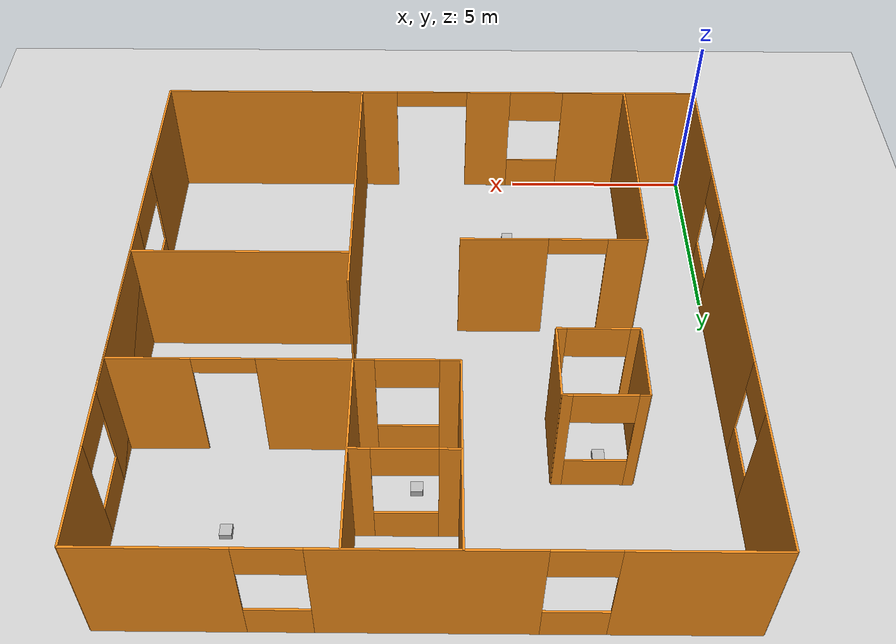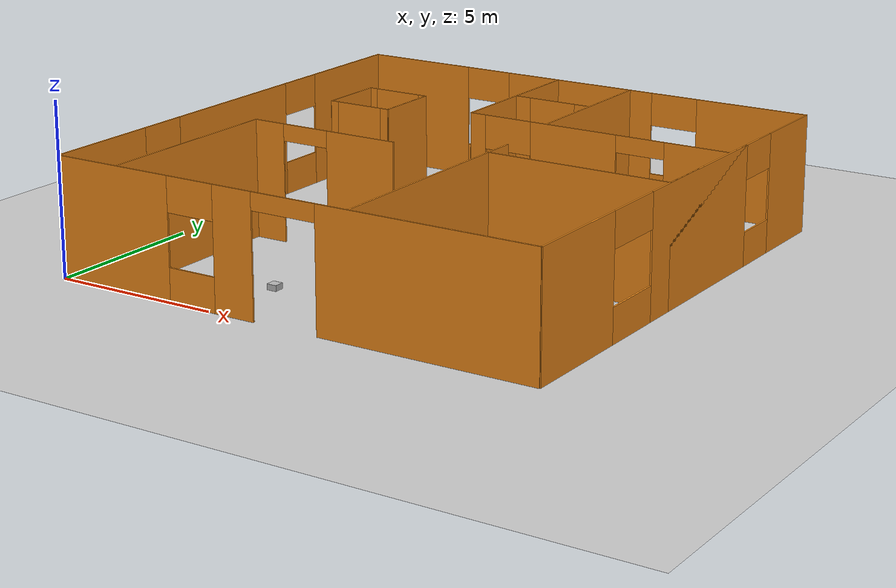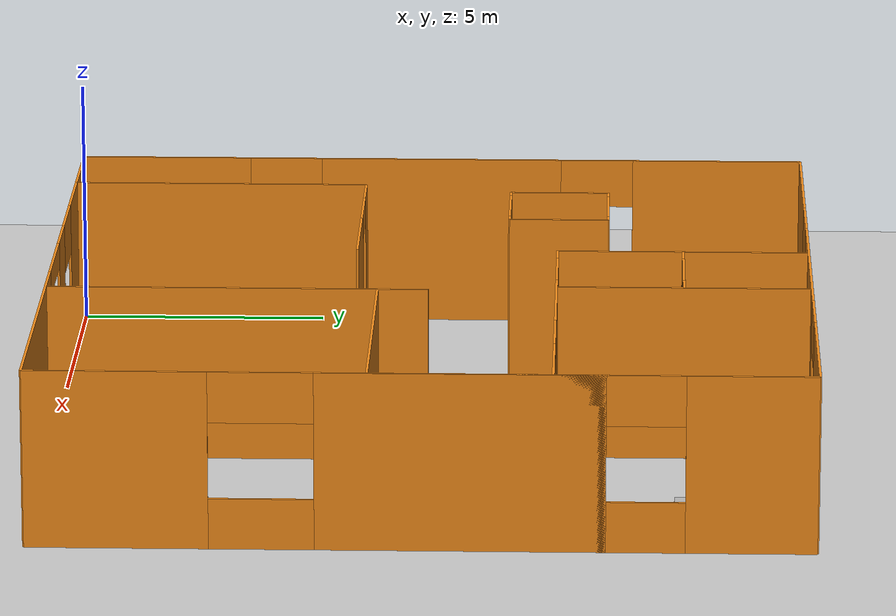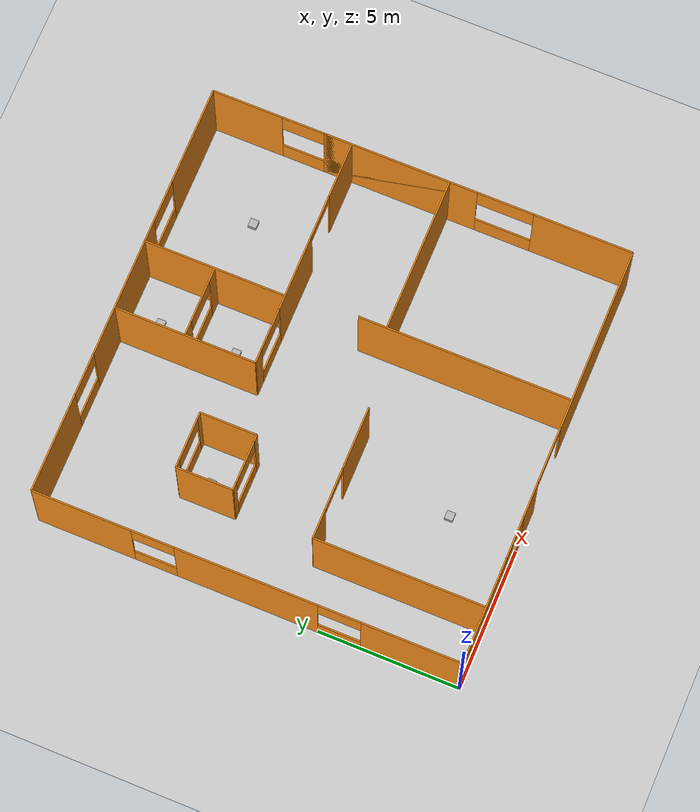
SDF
<sdf version="1.6">
 <world name="default">
  <include><uri>model://rirpc_box</uri><name>cube_4</name><pose>5.28125 2.46875 0 0 0 0</pose></include>
  <include><uri>model://rirpc_box</uri><name>cube_3</name><pose>12.28125 12.46875 0 0 0 0</pose></include>
  <include><uri>model://rirpc_box</uri><name>cube_2</name><pose>7.78125 11.21875 0 0 0 0</pose></include>
  <include><uri>model://rirpc_box</uri><name>cube_1</name><pose>7.78125 13.96875 0 0 0 0</pose></include>
  <include><uri>model://rirpc_box</uri><name>cube_0</name><pose>3.28125 10.21875 0 0 0 0</pose></include>
  <model name="window_11">
   <pose>3.5 9.0 1.75 0 0 -3.141592653589793</pose>
   <link name="top">
    <pose>0 0 1.25 0 0 0</pose>
    <inertial>
     <mass>1</mass>
     <inertia><ixx>0</ixx><ixy>0</ixy><ixz>0</ixz><iyy>0</iyy><iyz>0</iyz><izz>0</izz></inertia>
    </inertial>
    <collision name="collision"><geometry><box><size>1.5 0.05 1.0</size></box></geometry></collision>
    <visual name="visual">
     <geometry><box><size>1.5 0.05 1.0</size></box></geometry>
     <material>
      <script><name>Gazebo/Orange</name><uri>file://media/materials/scripts/gazebo.material</uri></script>
     </material>
    </visual>
   </link>
   <link name="bot">
    <pose>0 0 -1.25 0 0 0</pose>
    <inertial>
     <mass>1</mass>
     <inertia><ixx>0</ixx><ixy>0</ixy><ixz>0</ixz><iyy>0</iyy><iyz>0</iyz><izz>0</izz></inertia>
    </inertial>
    <collision name="collision"><geometry><box><size>1.5 0.05 1.0</size></box></geometry></collision>
    <visual name="visual">
     <geometry><box><size>1.5 0.05 1.0</size></box></geometry>
     <material>
      <script><name>Gazebo/Orange</name><uri>file://media/materials/scripts/gazebo.material</uri></script>
     </material>
    </visual>
   </link>
   <static>1</static>
  </model>
  <model name="window_10">
   <pose>3.5 11.0 1.75 0 0 -0.0</pose>
   <link name="top">
    <pose>0 0 1.25 0 0 0</pose>
    <inertial>
     <mass>1</mass>
     <inertia><ixx>0</ixx><ixy>0</ixy><ixz>0</ixz><iyy>0</iyy><iyz>0</iyz><izz>0</izz></inertia>
    </inertial>
    <collision name="collision"><geometry><box><size>1.5 0.05 1.0</size></box></geometry></collision>
    <visual name="visual">
     <geometry><box><size>1.5 0.05 1.0</size></box></geometry>
     <material>
      <script><name>Gazebo/Orange</name><uri>file://media/materials/scripts/gazebo.material</uri></script>
     </material>
    </visual>
   </link>
   <link name="bot">
    <pose>0 0 -1.25 0 0 0</pose>
    <inertial>
     <mass>1</mass>
     <inertia><ixx>0</ixx><ixy>0</ixy><ixz>0</ixz><iyy>0</iyy><iyz>0</iyz><izz>0</izz></inertia>
    </inertial>
    <collision name="collision"><geometry><box><size>1.5 0.05 1.0</size></box></geometry></collision>
    <visual name="visual">
     <geometry><box><size>1.5 0.05 1.0</size></box></geometry>
     <material>
      <script><name>Gazebo/Orange</name><uri>file://media/materials/scripts/gazebo.material</uri></script>
     </material>
    </visual>
   </link>
   <static>1</static>
  </model>
  <model name="window_9">
   <pose>4.25 15.0 1.75 0 0 -3.141592653589793</pose>
   <link name="top">
    <pose>0 0 1.25 0 0 0</pose>
    <inertial>
     <mass>1</mass>
     <inertia><ixx>0</ixx><ixy>0</ixy><ixz>0</ixz><iyy>0</iyy><iyz>0</iyz><izz>0</izz></inertia>
    </inertial>
    <collision name="collision"><geometry><box><size>1.5 0.05 1.0</size></box></geometry></collision>
    <visual name="visual">
     <geometry><box><size>1.5 0.05 1.0</size></box></geometry>
     <material>
      <script><name>Gazebo/Orange</name><uri>file://media/materials/scripts/gazebo.material</uri></script>
     </material>
    </visual>
   </link>
   <link name="bot">
    <pose>0 0 -1.25 0 0 0</pose>
    <inertial>
     <mass>1</mass>
     <inertia><ixx>0</ixx><ixy>0</ixy><ixz>0</ixz><iyy>0</iyy><iyz>0</iyz><izz>0</izz></inertia>
    </inertial>
    <collision name="collision"><geometry><box><size>1.5 0.05 1.0</size></box></geometry></collision>
    <visual name="visual">
     <geometry><box><size>1.5 0.05 1.0</size></box></geometry>
     <material>
      <script><name>Gazebo/Orange</name><uri>file://media/materials/scripts/gazebo.material</uri></script>
     </material>
    </visual>
   </link>
   <static>1</static>
  </model>
  <model name="window_8">
   <pose>0.0 10.75 1.75 0 0 1.5707963267948966</pose>
   <link name="top">
    <pose>0 0 1.25 0 0 0</pose>
    <inertial>
     <mass>1</mass>
     <inertia><ixx>0</ixx><ixy>0</ixy><ixz>0</ixz><iyy>0</iyy><iyz>0</iyz><izz>0</izz></inertia>
    </inertial>
    <collision name="collision"><geometry><box><size>1.5 0.05 1.0</size></box></geometry></collision>
    <visual name="visual">
     <geometry><box><size>1.5 0.05 1.0</size></box></geometry>
     <material>
      <script><name>Gazebo/Orange</name><uri>file://media/materials/scripts/gazebo.material</uri></script>
     </material>
    </visual>
   </link>
   <link name="bot">
    <pose>0 0 -1.25 0 0 0</pose>
    <inertial>
     <mass>1</mass>
     <inertia><ixx>0</ixx><ixy>0</ixy><ixz>0</ixz><iyy>0</iyy><iyz>0</iyz><izz>0</izz></inertia>
    </inertial>
    <collision name="collision"><geometry><box><size>1.5 0.05 1.0</size></box></geometry></collision>
    <visual name="visual">
     <geometry><box><size>1.5 0.05 1.0</size></box></geometry>
     <material>
      <script><name>Gazebo/Orange</name><uri>file://media/materials/scripts/gazebo.material</uri></script>
     </material>
    </visual>
   </link>
   <static>1</static>
  </model>
  <model name="window_7">
   <pose>10.75 15.0 1.75 0 0 -3.141592653589793</pose>
   <link name="top">
    <pose>0 0 1.25 0 0 0</pose>
    <inertial>
     <mass>1</mass>
     <inertia><ixx>0</ixx><ixy>0</ixy><ixz>0</ixz><iyy>0</iyy><iyz>0</iyz><izz>0</izz></inertia>
    </inertial>
    <collision name="collision"><geometry><box><size>1.5 0.05 1.0</size></box></geometry></collision>
    <visual name="visual">
     <geometry><box><size>1.5 0.05 1.0</size></box></geometry>
     <material>
      <script><name>Gazebo/Orange</name><uri>file://media/materials/scripts/gazebo.material</uri></script>
     </material>
    </visual>
   </link>
   <link name="bot">
    <pose>0 0 -1.25 0 0 0</pose>
    <inertial>
     <mass>1</mass>
     <inertia><ixx>0</ixx><ixy>0</ixy><ixz>0</ixz><iyy>0</iyy><iyz>0</iyz><izz>0</izz></inertia>
    </inertial>
    <collision name="collision"><geometry><box><size>1.5 0.05 1.0</size></box></geometry></collision>
    <visual name="visual">
     <geometry><box><size>1.5 0.05 1.0</size></box></geometry>
     <material>
      <script><name>Gazebo/Orange</name><uri>file://media/materials/scripts/gazebo.material</uri></script>
     </material>
    </visual>
   </link>
   <static>1</static>
  </model>
  <model name="window_6">
   <pose>8.0 12.5 1.75 0 0 -3.141592653589793</pose>
   <link name="top">
    <pose>0 0 1.25 0 0 0</pose>
    <inertial>
     <mass>1</mass>
     <inertia><ixx>0</ixx><ixy>0</ixy><ixz>0</ixz><iyy>0</iyy><iyz>0</iyz><izz>0</izz></inertia>
    </inertial>
    <collision name="collision"><geometry><box><size>1.5 0.05 1.0</size></box></geometry></collision>
    <visual name="visual">
     <geometry><box><size>1.5 0.05 1.0</size></box></geometry>
     <material>
      <script><name>Gazebo/Orange</name><uri>file://media/materials/scripts/gazebo.material</uri></script>
     </material>
    </visual>
   </link>
   <link name="bot">
    <pose>0 0 -1.25 0 0 0</pose>
    <inertial>
     <mass>1</mass>
     <inertia><ixx>0</ixx><ixy>0</ixy><ixz>0</ixz><iyy>0</iyy><iyz>0</iyz><izz>0</izz></inertia>
    </inertial>
    <collision name="collision"><geometry><box><size>1.5 0.05 1.0</size></box></geometry></collision>
    <visual name="visual">
     <geometry><box><size>1.5 0.05 1.0</size></box></geometry>
     <material>
      <script><name>Gazebo/Orange</name><uri>file://media/materials/scripts/gazebo.material</uri></script>
     </material>
    </visual>
   </link>
   <static>1</static>
  </model>
  <model name="window_5">
   <pose>8.0 10.0 1.75 0 0 -3.141592653589793</pose>
   <link name="top">
    <pose>0 0 1.25 0 0 0</pose>
    <inertial>
     <mass>1</mass>
     <inertia><ixx>0</ixx><ixy>0</ixy><ixz>0</ixz><iyy>0</iyy><iyz>0</iyz><izz>0</izz></inertia>
    </inertial>
    <collision name="collision"><geometry><box><size>1.5 0.05 1.0</size></box></geometry></collision>
    <visual name="visual">
     <geometry><box><size>1.5 0.05 1.0</size></box></geometry>
     <material>
      <script><name>Gazebo/Orange</name><uri>file://media/materials/scripts/gazebo.material</uri></script>
     </material>
    </visual>
   </link>
   <link name="bot">
    <pose>0 0 -1.25 0 0 0</pose>
    <inertial>
     <mass>1</mass>
     <inertia><ixx>0</ixx><ixy>0</ixy><ixz>0</ixz><iyy>0</iyy><iyz>0</iyz><izz>0</izz></inertia>
    </inertial>
    <collision name="collision"><geometry><box><size>1.5 0.05 1.0</size></box></geometry></collision>
    <visual name="visual">
     <geometry><box><size>1.5 0.05 1.0</size></box></geometry>
     <material>
      <script><name>Gazebo/Orange</name><uri>file://media/materials/scripts/gazebo.material</uri></script>
     </material>
    </visual>
   </link>
   <static>1</static>
  </model>
  <model name="window_4">
   <pose>15.0 4.5 1.75 0 0 -1.5707963267948966</pose>
   <link name="top">
    <pose>0 0 1.25 0 0 0</pose>
    <inertial>
     <mass>1</mass>
     <inertia><ixx>0</ixx><ixy>0</ixy><ixz>0</ixz><iyy>0</iyy><iyz>0</iyz><izz>0</izz></inertia>
    </inertial>
    <collision name="collision"><geometry><box><size>2.0 0.05 1.0</size></box></geometry></collision>
    <visual name="visual">
     <geometry><box><size>2.0 0.05 1.0</size></box></geometry>
     <material>
      <script><name>Gazebo/Orange</name><uri>file://media/materials/scripts/gazebo.material</uri></script>
     </material>
    </visual>
   </link>
   <link name="bot">
    <pose>0 0 -1.25 0 0 0</pose>
    <inertial>
     <mass>1</mass>
     <inertia><ixx>0</ixx><ixy>0</ixy><ixz>0</ixz><iyy>0</iyy><iyz>0</iyz><izz>0</izz></inertia>
    </inertial>
    <collision name="collision"><geometry><box><size>2.0 0.05 1.0</size></box></geometry></collision>
    <visual name="visual">
     <geometry><box><size>2.0 0.05 1.0</size></box></geometry>
     <material>
      <script><name>Gazebo/Orange</name><uri>file://media/materials/scripts/gazebo.material</uri></script>
     </material>
    </visual>
   </link>
   <static>1</static>
  </model>
  <model name="window_3">
   <pose>15.0 11.75 1.75 0 0 1.5707963267948966</pose>
   <link name="top">
    <pose>0 0 1.25 0 0 0</pose>
    <inertial>
     <mass>1</mass>
     <inertia><ixx>0</ixx><ixy>0</ixy><ixz>0</ixz><iyy>0</iyy><iyz>0</iyz><izz>0</izz></inertia>
    </inertial>
    <collision name="collision"><geometry><box><size>1.5 0.05 1.0</size></box></geometry></collision>
    <visual name="visual">
     <geometry><box><size>1.5 0.05 1.0</size></box></geometry>
     <material>
      <script><name>Gazebo/Orange</name><uri>file://media/materials/scripts/gazebo.material</uri></script>
     </material>
    </visual>
   </link>
   <link name="bot">
    <pose>0 0 -1.25 0 0 0</pose>
    <inertial>
     <mass>1</mass>
     <inertia><ixx>0</ixx><ixy>0</ixy><ixz>0</ixz><iyy>0</iyy><iyz>0</iyz><izz>0</izz></inertia>
    </inertial>
    <collision name="collision"><geometry><box><size>1.5 0.05 1.0</size></box></geometry></collision>
    <visual name="visual">
     <geometry><box><size>1.5 0.05 1.0</size></box></geometry>
     <material>
      <script><name>Gazebo/Orange</name><uri>file://media/materials/scripts/gazebo.material</uri></script>
     </material>
    </visual>
   </link>
   <static>1</static>
  </model>
  <model name="window_2">
   <pose>0.0 4.25 1.75 0 0 -1.5707963267948966</pose>
   <link name="top">
    <pose>0 0 1.25 0 0 0</pose>
    <inertial>
     <mass>1</mass>
     <inertia><ixx>0</ixx><ixy>0</ixy><ixz>0</ixz><iyy>0</iyy><iyz>0</iyz><izz>0</izz></inertia>
    </inertial>
    <collision name="collision"><geometry><box><size>1.5 0.05 1.0</size></box></geometry></collision>
    <visual name="visual">
     <geometry><box><size>1.5 0.05 1.0</size></box></geometry>
     <material>
      <script><name>Gazebo/Orange</name><uri>file://media/materials/scripts/gazebo.material</uri></script>
     </material>
    </visual>
   </link>
   <link name="bot">
    <pose>0 0 -1.25 0 0 0</pose>
    <inertial>
     <mass>1</mass>
     <inertia><ixx>0</ixx><ixy>0</ixy><ixz>0</ixz><iyy>0</iyy><iyz>0</iyz><izz>0</izz></inertia>
    </inertial>
    <collision name="collision"><geometry><box><size>1.5 0.05 1.0</size></box></geometry></collision>
    <visual name="visual">
     <geometry><box><size>1.5 0.05 1.0</size></box></geometry>
     <material>
      <script><name>Gazebo/Orange</name><uri>file://media/materials/scripts/gazebo.material</uri></script>
     </material>
    </visual>
   </link>
   <static>1</static>
  </model>
  <model name="window_1">
   <pose>4.5 0.0 1.75 0 0 -3.141592653589793</pose>
   <link name="top">
    <pose>0 0 1.25 0 0 0</pose>
    <inertial>
     <mass>1</mass>
     <inertia><ixx>0</ixx><ixy>0</ixy><ixz>0</ixz><iyy>0</iyy><iyz>0</iyz><izz>0</izz></inertia>
    </inertial>
    <collision name="collision"><geometry><box><size>1.5 0.05 1.0</size></box></geometry></collision>
    <visual name="visual">
     <geometry><box><size>1.5 0.05 1.0</size></box></geometry>
     <material>
      <script><name>Gazebo/Orange</name><uri>file://media/materials/scripts/gazebo.material</uri></script>
     </material>
    </visual>
   </link>
   <link name="bot">
    <pose>0 0 -1.25 0 0 0</pose>
    <inertial>
     <mass>1</mass>
     <inertia><ixx>0</ixx><ixy>0</ixy><ixz>0</ixz><iyy>0</iyy><iyz>0</iyz><izz>0</izz></inertia>
    </inertial>
    <collision name="collision"><geometry><box><size>1.5 0.05 1.0</size></box></geometry></collision>
    <visual name="visual">
     <geometry><box><size>1.5 0.05 1.0</size></box></geometry>
     <material>
      <script><name>Gazebo/Orange</name><uri>file://media/materials/scripts/gazebo.material</uri></script>
     </material>
    </visual>
   </link>
   <static>1</static>
  </model>
  <model name="box_34">
   <pose>3.75 6.0 3.25 0 0 -0.0</pose>
   <link name="link">
    <inertial>
     <mass>1</mass>
     <inertia><ixx>0</ixx><ixy>0</ixy><ixz>0</ixz><iyy>0</iyy><iyz>0</iyz><izz>0</izz></inertia>
    </inertial>
    <collision name="collision"><geometry><box><size>1.5 0.05 0.5</size></box></geometry></collision>
    <visual name="visual">
     <geometry><box><size>1.5 0.05 0.5</size></box></geometry>
     <material>
      <script><name>Gazebo/Orange</name><uri>file://media/materials/scripts/gazebo.material</uri></script>
     </material>
    </visual>
   </link>
   <static>1</static>
  </model>
  <model name="box_33">
   <pose>12.25 10.0 3.25 0 0 -0.0</pose>
   <link name="link">
    <inertial>
     <mass>1</mass>
     <inertia><ixx>0</ixx><ixy>0</ixy><ixz>0</ixz><iyy>0</iyy><iyz>0</iyz><izz>0</izz></inertia>
    </inertial>
    <collision name="collision"><geometry><box><size>1.5 0.05 0.5</size></box></geometry></collision>
    <visual name="visual">
     <geometry><box><size>1.5 0.05 0.5</size></box></geometry>
     <material>
      <script><name>Gazebo/Orange</name><uri>file://media/materials/scripts/gazebo.material</uri></script>
     </material>
    </visual>
   </link>
   <static>1</static>
  </model>
  <model name="box_32">
   <pose>7.5 0.0 3.25 0 0 -3.141592653589793</pose>
   <link name="link">
    <inertial>
     <mass>1</mass>
     <inertia><ixx>0</ixx><ixy>0</ixy><ixz>0</ixz><iyy>0</iyy><iyz>0</iyz><izz>0</izz></inertia>
    </inertial>
    <collision name="collision"><geometry><box><size>2.0 0.05 0.5</size></box></geometry></collision>
    <visual name="visual">
     <geometry><box><size>2.0 0.05 0.5</size></box></geometry>
     <material>
      <script><name>Gazebo/Orange</name><uri>file://media/materials/scripts/gazebo.material</uri></script>
     </material>
    </visual>
   </link>
   <static>1</static>
  </model>
  <model name="box_31">
   <pose>2.625 11.0 1.75 0 0 -3.141592653589793</pose>
   <link name="link">
    <inertial>
     <mass>1</mass>
     <inertia><ixx>0</ixx><ixy>0</ixy><ixz>0</ixz><iyy>0</iyy><iyz>0</iyz><izz>0</izz></inertia>
    </inertial>
    <collision name="collision"><geometry><box><size>0.25 0.05 3.5</size></box></geometry></collision>
    <visual name="visual">
     <geometry><box><size>0.25 0.05 3.5</size></box></geometry>
     <material>
      <script><name>Gazebo/Orange</name><uri>file://media/materials/scripts/gazebo.material</uri></script>
     </material>
    </visual>
   </link>
   <static>1</static>
  </model>
  <model name="box_30">
   <pose>2.5 10.0 1.75 0 0 -1.5707963267948966</pose>
   <link name="link">
    <inertial>
     <mass>1</mass>
     <inertia><ixx>0</ixx><ixy>0</ixy><ixz>0</ixz><iyy>0</iyy><iyz>0</iyz><izz>0</izz></inertia>
    </inertial>
    <collision name="collision"><geometry><box><size>2.0 0.05 3.5</size></box></geometry></collision>
    <visual name="visual">
     <geometry><box><size>2.0 0.05 3.5</size></box></geometry>
     <material>
      <script><name>Gazebo/Orange</name><uri>file://media/materials/scripts/gazebo.material</uri></script>
     </material>
    </visual>
   </link>
   <static>1</static>
  </model>
  <model name="box_29">
   <pose>2.625 9.0 1.75 0 0 -0.0</pose>
   <link name="link">
    <inertial>
     <mass>1</mass>
     <inertia><ixx>0</ixx><ixy>0</ixy><ixz>0</ixz><iyy>0</iyy><iyz>0</iyz><izz>0</izz></inertia>
    </inertial>
    <collision name="collision"><geometry><box><size>0.25 0.05 3.5</size></box></geometry></collision>
    <visual name="visual">
     <geometry><box><size>0.25 0.05 3.5</size></box></geometry>
     <material>
      <script><name>Gazebo/Orange</name><uri>file://media/materials/scripts/gazebo.material</uri></script>
     </material>
    </visual>
   </link>
   <static>1</static>
  </model>
  <model name="box_28">
   <pose>4.375 9.0 1.75 0 0 -0.0</pose>
   <link name="link">
    <inertial>
     <mass>1</mass>
     <inertia><ixx>0</ixx><ixy>0</ixy><ixz>0</ixz><iyy>0</iyy><iyz>0</iyz><izz>0</izz></inertia>
    </inertial>
    <collision name="collision"><geometry><box><size>0.25 0.05 3.5</size></box></geometry></collision>
    <visual name="visual">
     <geometry><box><size>0.25 0.05 3.5</size></box></geometry>
     <material>
      <script><name>Gazebo/Orange</name><uri>file://media/materials/scripts/gazebo.material</uri></script>
     </material>
    </visual>
   </link>
   <static>1</static>
  </model>
  <model name="box_27">
   <pose>4.5 10.0 1.75 0 0 1.5707963267948966</pose>
   <link name="link">
    <inertial>
     <mass>1</mass>
     <inertia><ixx>0</ixx><ixy>0</ixy><ixz>0</ixz><iyy>0</iyy><iyz>0</iyz><izz>0</izz></inertia>
    </inertial>
    <collision name="collision"><geometry><box><size>2.0 0.05 3.5</size></box></geometry></collision>
    <visual name="visual">
     <geometry><box><size>2.0 0.05 3.5</size></box></geometry>
     <material>
      <script><name>Gazebo/Orange</name><uri>file://media/materials/scripts/gazebo.material</uri></script>
     </material>
    </visual>
   </link>
   <static>1</static>
  </model>
  <model name="box_26">
   <pose>4.375 11.0 1.75 0 0 -3.141592653589793</pose>
   <link name="link">
    <inertial>
     <mass>1</mass>
     <inertia><ixx>0</ixx><ixy>0</ixy><ixz>0</ixz><iyy>0</iyy><iyz>0</iyz><izz>0</izz></inertia>
    </inertial>
    <collision name="collision"><geometry><box><size>0.25 0.05 3.5</size></box></geometry></collision>
    <visual name="visual">
     <geometry><box><size>0.25 0.05 3.5</size></box></geometry>
     <material>
      <script><name>Gazebo/Orange</name><uri>file://media/materials/scripts/gazebo.material</uri></script>
     </material>
    </visual>
   </link>
   <static>1</static>
  </model>
  <model name="box_25">
   <pose>7.5 15.0 1.75 0 0 -3.141592653589793</pose>
   <link name="link">
    <inertial>
     <mass>1</mass>
     <inertia><ixx>0</ixx><ixy>0</ixy><ixz>0</ixz><iyy>0</iyy><iyz>0</iyz><izz>0</izz></inertia>
    </inertial>
    <collision name="collision"><geometry><box><size>5.0 0.05 3.5</size></box></geometry></collision>
    <visual name="visual">
     <geometry><box><size>5.0 0.05 3.5</size></box></geometry>
     <material>
      <script><name>Gazebo/Orange</name><uri>file://media/materials/scripts/gazebo.material</uri></script>
     </material>
    </visual>
   </link>
   <static>1</static>
  </model>
  <model name="box_24">
   <pose>1.75 15.0 1.75 0 0 -0.0</pose>
   <link name="link">
    <inertial>
     <mass>1</mass>
     <inertia><ixx>0</ixx><ixy>0</ixy><ixz>0</ixz><iyy>0</iyy><iyz>0</iyz><izz>0</izz></inertia>
    </inertial>
    <collision name="collision"><geometry><box><size>3.5 0.05 3.5</size></box></geometry></collision>
    <visual name="visual">
     <geometry><box><size>3.5 0.05 3.5</size></box></geometry>
     <material>
      <script><name>Gazebo/Orange</name><uri>file://media/materials/scripts/gazebo.material</uri></script>
     </material>
    </visual>
   </link>
   <static>1</static>
  </model>
  <model name="box_23">
   <pose>2.5 6.0 1.75 0 0 -0.0</pose>
   <link name="link">
    <inertial>
     <mass>1</mass>
     <inertia><ixx>0</ixx><ixy>0</ixy><ixz>0</ixz><iyy>0</iyy><iyz>0</iyz><izz>0</izz></inertia>
    </inertial>
    <collision name="collision"><geometry><box><size>1.0 0.05 3.5</size></box></geometry></collision>
    <visual name="visual">
     <geometry><box><size>1.0 0.05 3.5</size></box></geometry>
     <material>
      <script><name>Gazebo/Orange</name><uri>file://media/materials/scripts/gazebo.material</uri></script>
     </material>
    </visual>
   </link>
   <static>1</static>
  </model>
  <model name="box_22">
   <pose>5.625 6.0 1.75 0 0 -0.0</pose>
   <link name="link">
    <inertial>
     <mass>1</mass>
     <inertia><ixx>0</ixx><ixy>0</ixy><ixz>0</ixz><iyy>0</iyy><iyz>0</iyz><izz>0</izz></inertia>
    </inertial>
    <collision name="collision"><geometry><box><size>2.25 0.05 3.5</size></box></geometry></collision>
    <visual name="visual">
     <geometry><box><size>2.25 0.05 3.5</size></box></geometry>
     <material>
      <script><name>Gazebo/Orange</name><uri>file://media/materials/scripts/gazebo.material</uri></script>
     </material>
    </visual>
   </link>
   <static>1</static>
  </model>
  <model name="box_21">
   <pose>0.0 7.5 1.75 0 0 1.5707963267948966</pose>
   <link name="link">
    <inertial>
     <mass>1</mass>
     <inertia><ixx>0</ixx><ixy>0</ixy><ixz>0</ixz><iyy>0</iyy><iyz>0</iyz><izz>0</izz></inertia>
    </inertial>
    <collision name="collision"><geometry><box><size>5.0 0.05 3.5</size></box></geometry></collision>
    <visual name="visual">
     <geometry><box><size>5.0 0.05 3.5</size></box></geometry>
     <material>
      <script><name>Gazebo/Orange</name><uri>file://media/materials/scripts/gazebo.material</uri></script>
     </material>
    </visual>
   </link>
   <static>1</static>
  </model>
  <model name="box_20">
   <pose>0.0 13.25 1.75 0 0 -1.5707963267948966</pose>
   <link name="link">
    <inertial>
     <mass>1</mass>
     <inertia><ixx>0</ixx><ixy>0</ixy><ixz>0</ixz><iyy>0</iyy><iyz>0</iyz><izz>0</izz></inertia>
    </inertial>
    <collision name="collision"><geometry><box><size>3.5 0.05 3.5</size></box></geometry></collision>
    <visual name="visual">
     <geometry><box><size>3.5 0.05 3.5</size></box></geometry>
     <material>
      <script><name>Gazebo/Orange</name><uri>file://media/materials/scripts/gazebo.material</uri></script>
     </material>
    </visual>
   </link>
   <static>1</static>
  </model>
  <model name="box_19">
   <pose>13.25 15.0 1.75 0 0 -3.141592653589793</pose>
   <link name="link">
    <inertial>
     <mass>1</mass>
     <inertia><ixx>0</ixx><ixy>0</ixy><ixz>0</ixz><iyy>0</iyy><iyz>0</iyz><izz>0</izz></inertia>
    </inertial>
    <collision name="collision"><geometry><box><size>3.5 0.05 3.5</size></box></geometry></collision>
    <visual name="visual">
     <geometry><box><size>3.5 0.05 3.5</size></box></geometry>
     <material>
      <script><name>Gazebo/Orange</name><uri>file://media/materials/scripts/gazebo.material</uri></script>
     </material>
    </visual>
   </link>
   <static>1</static>
  </model>
  <model name="box_18">
   <pose>7.0 12.5 1.75 0 0 -0.0</pose>
   <link name="link">
    <inertial>
     <mass>1</mass>
     <inertia><ixx>0</ixx><ixy>0</ixy><ixz>0</ixz><iyy>0</iyy><iyz>0</iyz><izz>0</izz></inertia>
    </inertial>
    <collision name="collision"><geometry><box><size>0.5 0.05 3.5</size></box></geometry></collision>
    <visual name="visual">
     <geometry><box><size>0.5 0.05 3.5</size></box></geometry>
     <material>
      <script><name>Gazebo/Orange</name><uri>file://media/materials/scripts/gazebo.material</uri></script>
     </material>
    </visual>
   </link>
   <static>1</static>
  </model>
  <model name="box_17">
   <pose>9.0 12.5 1.75 0 0 -0.0</pose>
   <link name="link">
    <inertial>
     <mass>1</mass>
     <inertia><ixx>0</ixx><ixy>0</ixy><ixz>0</ixz><iyy>0</iyy><iyz>0</iyz><izz>0</izz></inertia>
    </inertial>
    <collision name="collision"><geometry><box><size>0.5 0.05 3.5</size></box></geometry></collision>
    <visual name="visual">
     <geometry><box><size>0.5 0.05 3.5</size></box></geometry>
     <material>
      <script><name>Gazebo/Orange</name><uri>file://media/materials/scripts/gazebo.material</uri></script>
     </material>
    </visual>
   </link>
   <static>1</static>
  </model>
  <model name="box_16">
   <pose>6.75 12.5 1.75 0 0 -1.5707963267948966</pose>
   <link name="link">
    <inertial>
     <mass>1</mass>
     <inertia><ixx>0</ixx><ixy>0</ixy><ixz>0</ixz><iyy>0</iyy><iyz>0</iyz><izz>0</izz></inertia>
    </inertial>
    <collision name="collision"><geometry><box><size>5.0 0.05 3.5</size></box></geometry></collision>
    <visual name="visual">
     <geometry><box><size>5.0 0.05 3.5</size></box></geometry>
     <material>
      <script><name>Gazebo/Orange</name><uri>file://media/materials/scripts/gazebo.material</uri></script>
     </material>
    </visual>
   </link>
   <static>1</static>
  </model>
  <model name="box_15">
   <pose>7.0 10.0 1.75 0 0 -0.0</pose>
   <link name="link">
    <inertial>
     <mass>1</mass>
     <inertia><ixx>0</ixx><ixy>0</ixy><ixz>0</ixz><iyy>0</iyy><iyz>0</iyz><izz>0</izz></inertia>
    </inertial>
    <collision name="collision"><geometry><box><size>0.5 0.05 3.5</size></box></geometry></collision>
    <visual name="visual">
     <geometry><box><size>0.5 0.05 3.5</size></box></geometry>
     <material>
      <script><name>Gazebo/Orange</name><uri>file://media/materials/scripts/gazebo.material</uri></script>
     </material>
    </visual>
   </link>
   <static>1</static>
  </model>
  <model name="box_14">
   <pose>9.25 12.5 1.75 0 0 -1.5707963267948966</pose>
   <link name="link">
    <inertial>
     <mass>1</mass>
     <inertia><ixx>0</ixx><ixy>0</ixy><ixz>0</ixz><iyy>0</iyy><iyz>0</iyz><izz>0</izz></inertia>
    </inertial>
    <collision name="collision"><geometry><box><size>5.0 0.05 3.5</size></box></geometry></collision>
    <visual name="visual">
     <geometry><box><size>5.0 0.05 3.5</size></box></geometry>
     <material>
      <script><name>Gazebo/Orange</name><uri>file://media/materials/scripts/gazebo.material</uri></script>
     </material>
    </visual>
   </link>
   <static>1</static>
  </model>
  <model name="box_13">
   <pose>10.125 10.0 1.75 0 0 -0.0</pose>
   <link name="link">
    <inertial>
     <mass>1</mass>
     <inertia><ixx>0</ixx><ixy>0</ixy><ixz>0</ixz><iyy>0</iyy><iyz>0</iyz><izz>0</izz></inertia>
    </inertial>
    <collision name="collision"><geometry><box><size>2.75 0.05 3.5</size></box></geometry></collision>
    <visual name="visual">
     <geometry><box><size>2.75 0.05 3.5</size></box></geometry>
     <material>
      <script><name>Gazebo/Orange</name><uri>file://media/materials/scripts/gazebo.material</uri></script>
     </material>
    </visual>
   </link>
   <static>1</static>
  </model>
  <model name="box_12">
   <pose>14.0 10.0 1.75 0 0 -0.0</pose>
   <link name="link">
    <inertial>
     <mass>1</mass>
     <inertia><ixx>0</ixx><ixy>0</ixy><ixz>0</ixz><iyy>0</iyy><iyz>0</iyz><izz>0</izz></inertia>
    </inertial>
    <collision name="collision"><geometry><box><size>2.0 0.05 3.5</size></box></geometry></collision>
    <visual name="visual">
     <geometry><box><size>2.0 0.05 3.5</size></box></geometry>
     <material>
      <script><name>Gazebo/Orange</name><uri>file://media/materials/scripts/gazebo.material</uri></script>
     </material>
    </visual>
   </link>
   <static>1</static>
  </model>
  <model name="box_11">
   <pose>9.5 3.75 1.75 0 0 1.5707963267948966</pose>
   <link name="link">
    <inertial>
     <mass>1</mass>
     <inertia><ixx>0</ixx><ixy>0</ixy><ixz>0</ixz><iyy>0</iyy><iyz>0</iyz><izz>0</izz></inertia>
    </inertial>
    <collision name="collision"><geometry><box><size>7.5 0.05 3.5</size></box></geometry></collision>
    <visual name="visual">
     <geometry><box><size>7.5 0.05 3.5</size></box></geometry>
     <material>
      <script><name>Gazebo/Orange</name><uri>file://media/materials/scripts/gazebo.material</uri></script>
     </material>
    </visual>
   </link>
   <static>1</static>
  </model>
  <model name="box_10">
   <pose>12.25 6.5 1.75 0 0 -0.0</pose>
   <link name="link">
    <inertial>
     <mass>1</mass>
     <inertia><ixx>0</ixx><ixy>0</ixy><ixz>0</ixz><iyy>0</iyy><iyz>0</iyz><izz>0</izz></inertia>
    </inertial>
    <collision name="collision"><geometry><box><size>5.5 0.05 3.5</size></box></geometry></collision>
    <visual name="visual">
     <geometry><box><size>5.5 0.05 3.5</size></box></geometry>
     <material>
      <script><name>Gazebo/Orange</name><uri>file://media/materials/scripts/gazebo.material</uri></script>
     </material>
    </visual>
   </link>
   <static>1</static>
  </model>
  <model name="box_9">
   <pose>2.0 3.0 1.75 0 0 -1.5707963267948966</pose>
   <link name="link">
    <inertial>
     <mass>1</mass>
     <inertia><ixx>0</ixx><ixy>0</ixy><ixz>0</ixz><iyy>0</iyy><iyz>0</iyz><izz>0</izz></inertia>
    </inertial>
    <collision name="collision"><geometry><box><size>6.0 0.05 3.5</size></box></geometry></collision>
    <visual name="visual">
     <geometry><box><size>6.0 0.05 3.5</size></box></geometry>
     <material>
      <script><name>Gazebo/Orange</name><uri>file://media/materials/scripts/gazebo.material</uri></script>
     </material>
    </visual>
   </link>
   <static>1</static>
  </model>
  <model name="box_8">
   <pose>15.0 8.75 1.75 0 0 1.5707963267948966</pose>
   <link name="link">
    <inertial>
     <mass>1</mass>
     <inertia><ixx>0</ixx><ixy>0</ixy><ixz>0</ixz><iyy>0</iyy><iyz>0</iyz><izz>0</izz></inertia>
    </inertial>
    <collision name="collision"><geometry><box><size>4.5 0.05 3.5</size></box></geometry></collision>
    <visual name="visual">
     <geometry><box><size>4.5 0.05 3.5</size></box></geometry>
     <material>
      <script><name>Gazebo/Orange</name><uri>file://media/materials/scripts/gazebo.material</uri></script>
     </material>
    </visual>
   </link>
   <static>1</static>
  </model>
  <model name="box_7">
   <pose>15.0 8.25 1.75 0 0 -1.5707963267948966</pose>
   <link name="link">
    <inertial>
     <mass>1</mass>
     <inertia><ixx>0</ixx><ixy>0</ixy><ixz>0</ixz><iyy>0</iyy><iyz>0</iyz><izz>0</izz></inertia>
    </inertial>
    <collision name="collision"><geometry><box><size>5.5 0.05 3.5</size></box></geometry></collision>
    <visual name="visual">
     <geometry><box><size>5.5 0.05 3.5</size></box></geometry>
     <material>
      <script><name>Gazebo/Orange</name><uri>file://media/materials/scripts/gazebo.material</uri></script>
     </material>
    </visual>
   </link>
   <static>1</static>
  </model>
  <model name="box_6">
   <pose>15.0 1.75 1.75 0 0 -1.5707963267948966</pose>
   <link name="link">
    <inertial>
     <mass>1</mass>
     <inertia><ixx>0</ixx><ixy>0</ixy><ixz>0</ixz><iyy>0</iyy><iyz>0</iyz><izz>0</izz></inertia>
    </inertial>
    <collision name="collision"><geometry><box><size>3.5 0.05 3.5</size></box></geometry></collision>
    <visual name="visual">
     <geometry><box><size>3.5 0.05 3.5</size></box></geometry>
     <material>
      <script><name>Gazebo/Orange</name><uri>file://media/materials/scripts/gazebo.material</uri></script>
     </material>
    </visual>
   </link>
   <static>1</static>
  </model>
  <model name="box_5">
   <pose>15.0 13.75 1.75 0 0 1.5707963267948966</pose>
   <link name="link">
    <inertial>
     <mass>1</mass>
     <inertia><ixx>0</ixx><ixy>0</ixy><ixz>0</ixz><iyy>0</iyy><iyz>0</iyz><izz>0</izz></inertia>
    </inertial>
    <collision name="collision"><geometry><box><size>2.5 0.05 3.5</size></box></geometry></collision>
    <visual name="visual">
     <geometry><box><size>2.5 0.05 3.5</size></box></geometry>
     <material>
      <script><name>Gazebo/Orange</name><uri>file://media/materials/scripts/gazebo.material</uri></script>
     </material>
    </visual>
   </link>
   <static>1</static>
  </model>
  <model name="box_4">
   <pose>0.0 1.75 1.75 0 0 1.5707963267948966</pose>
   <link name="link">
    <inertial>
     <mass>1</mass>
     <inertia><ixx>0</ixx><ixy>0</ixy><ixz>0</ixz><iyy>0</iyy><iyz>0</iyz><izz>0</izz></inertia>
    </inertial>
    <collision name="collision"><geometry><box><size>3.5 0.05 3.5</size></box></geometry></collision>
    <visual name="visual">
     <geometry><box><size>3.5 0.05 3.5</size></box></geometry>
     <material>
      <script><name>Gazebo/Orange</name><uri>file://media/materials/scripts/gazebo.material</uri></script>
     </material>
    </visual>
   </link>
   <static>1</static>
  </model>
  <model name="box_3">
   <pose>1.875 0.0 1.75 0 0 -0.0</pose>
   <link name="link">
    <inertial>
     <mass>1</mass>
     <inertia><ixx>0</ixx><ixy>0</ixy><ixz>0</ixz><iyy>0</iyy><iyz>0</iyz><izz>0</izz></inertia>
    </inertial>
    <collision name="collision"><geometry><box><size>3.75 0.05 3.5</size></box></geometry></collision>
    <visual name="visual">
     <geometry><box><size>3.75 0.05 3.5</size></box></geometry>
     <material>
      <script><name>Gazebo/Orange</name><uri>file://media/materials/scripts/gazebo.material</uri></script>
     </material>
    </visual>
   </link>
   <static>1</static>
  </model>
  <model name="box_2">
   <pose>5.875 0.0 1.75 0 0 -3.141592653589793</pose>
   <link name="link">
    <inertial>
     <mass>1</mass>
     <inertia><ixx>0</ixx><ixy>0</ixy><ixz>0</ixz><iyy>0</iyy><iyz>0</iyz><izz>0</izz></inertia>
    </inertial>
    <collision name="collision"><geometry><box><size>1.25 0.05 3.5</size></box></geometry></collision>
    <visual name="visual">
     <geometry><box><size>1.25 0.05 3.5</size></box></geometry>
     <material>
      <script><name>Gazebo/Orange</name><uri>file://media/materials/scripts/gazebo.material</uri></script>
     </material>
    </visual>
   </link>
   <static>1</static>
  </model>
  <model name="box_1">
   <pose>11.75 0.0 1.75 0 0 -3.141592653589793</pose>
   <link name="link">
    <inertial>
     <mass>1</mass>
     <inertia><ixx>0</ixx><ixy>0</ixy><ixz>0</ixz><iyy>0</iyy><iyz>0</iyz><izz>0</izz></inertia>
    </inertial>
    <collision name="collision"><geometry><box><size>6.5 0.05 3.5</size></box></geometry></collision>
    <visual name="visual">
     <geometry><box><size>6.5 0.05 3.5</size></box></geometry>
     <material>
      <script><name>Gazebo/Orange</name><uri>file://media/materials/scripts/gazebo.material</uri></script>
     </material>
    </visual>
   </link>
   <static>1</static>
  </model>
  <model name="ground_plane">
   <static>1</static>
   <link name="link">
    <collision name="collision">
     <geometry><plane><normal>0 0 1</normal><size>100 100</size></plane></geometry>
     <surface>
      <contact><collide_bitmask>65535</collide_bitmask></contact>
      <friction><ode><mu>100</mu><mu2>50</mu2></ode></friction>
     </surface>
    </collision>
    <visual name="visual">
     <cast_shadows>0</cast_shadows>
     <geometry><plane><normal>0 0 1</normal><size>100 100</size></plane></geometry>
     <material>
      <script><uri>file://media/materials/scripts/gazebo.material</uri><name>Gazebo/Grey</name></script>
     </material>
    </visual>
   </link>
  </model>
 </world>
</sdf>
